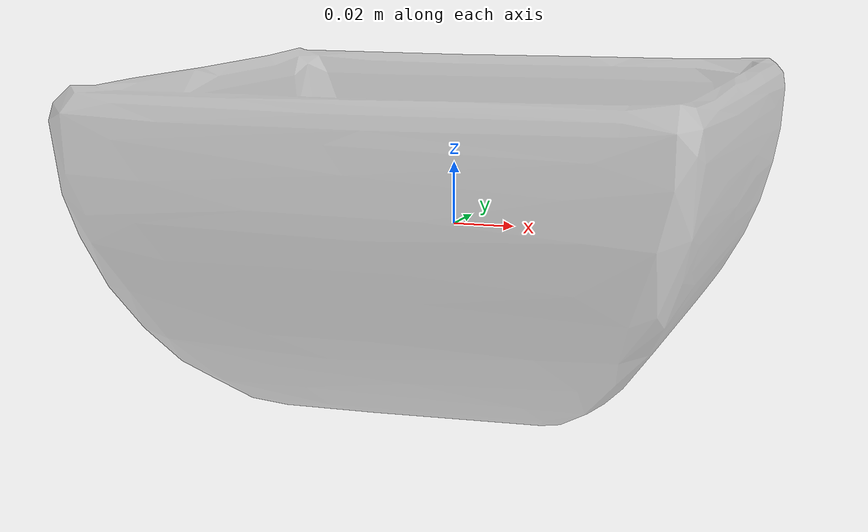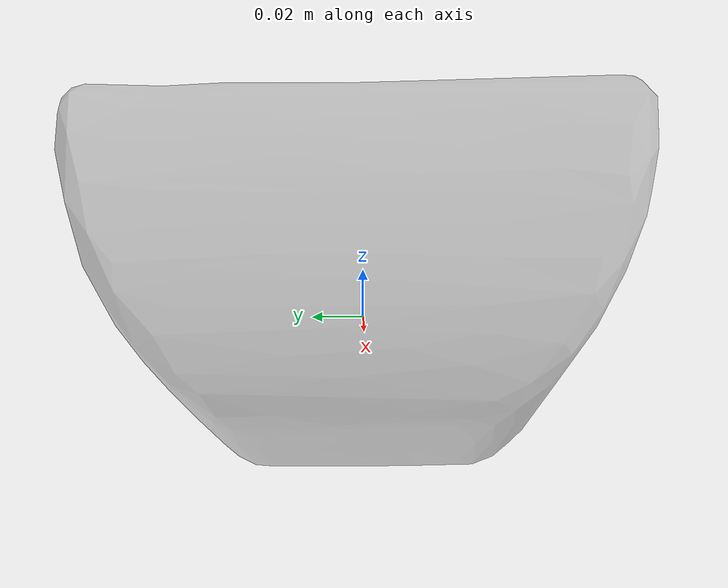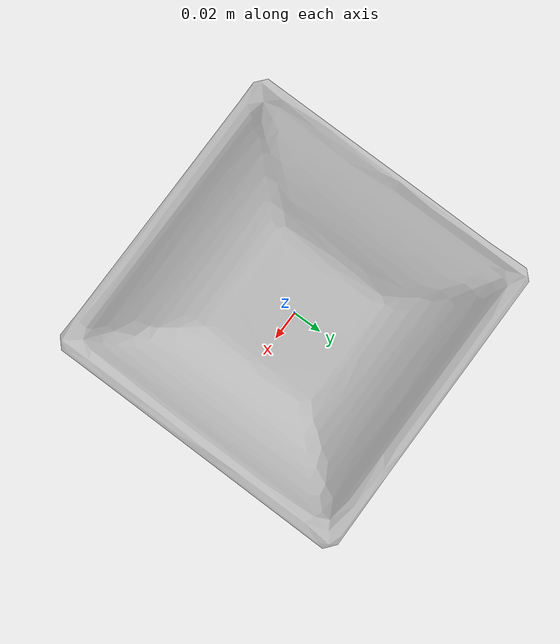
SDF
<?xml version='1.0'?>
<sdf version='1.4'>
  <model name="object">
    <link name='link'>
      <pose>0.0 0 0 0 0 0</pose>
      <inertial>
        <mass>0.937403</mass>
        <inertia>
          <ixx>0.00404786</ixx>
          <ixy>0</ixy>
          <ixz>0</ixz>
          <iyy>0.00404491</iyy>
          <iyz>0</iyz>
          <izz>0.00647279</izz>
        </inertia>
      </inertial>
      <collision name='c_bp_022'>
        <geometry>
          <mesh>
            <scale>1 1 1</scale>
            <uri>model://bowl_poisson_022/mesh/bowl_poisson_022.dae</uri>
          </mesh>
        </geometry>
        <surface>
          <contact>
            <ode>
              <kp>1000000</kp>
              <kd>100</kd>
              <max_vel>1000.0</max_vel>
              <min_depth>0.0</min_depth>
            </ode>
          </contact>
        </surface>
      </collision>

      <visual name='v_bp_022'>
        <geometry>
          <mesh>
            <scale>1 1 1</scale>
            <uri>model://bowl_poisson_022/mesh/bowl_poisson_022.dae</uri>
          </mesh>
        </geometry>
        <material>
          <script>
            <name>Gazebo/GreyTransparent</name>
            <uri>file://media/materials/scripts/gazebo.material</uri>
          </script>
        </material>
      </visual>

      <velocity_decay>
        <linear>0.0004</linear>
        <angular>0.0004</angular>
      </velocity_decay>
    </link>
  </model>
</sdf>
